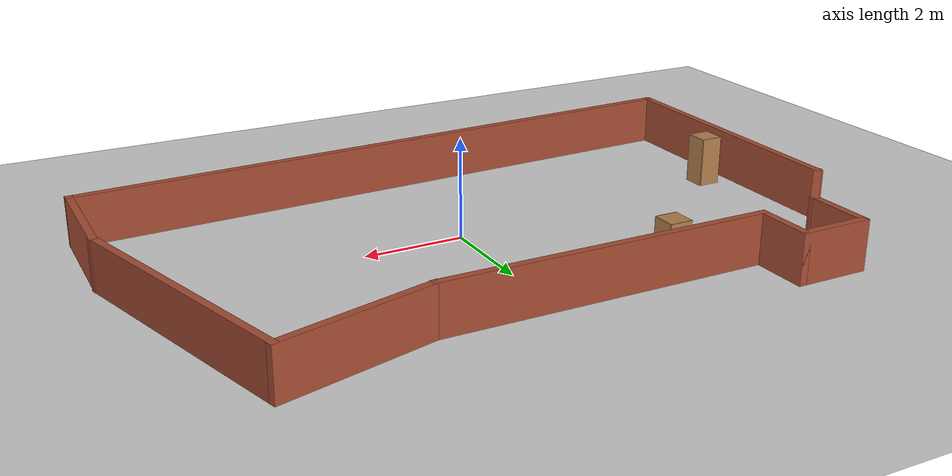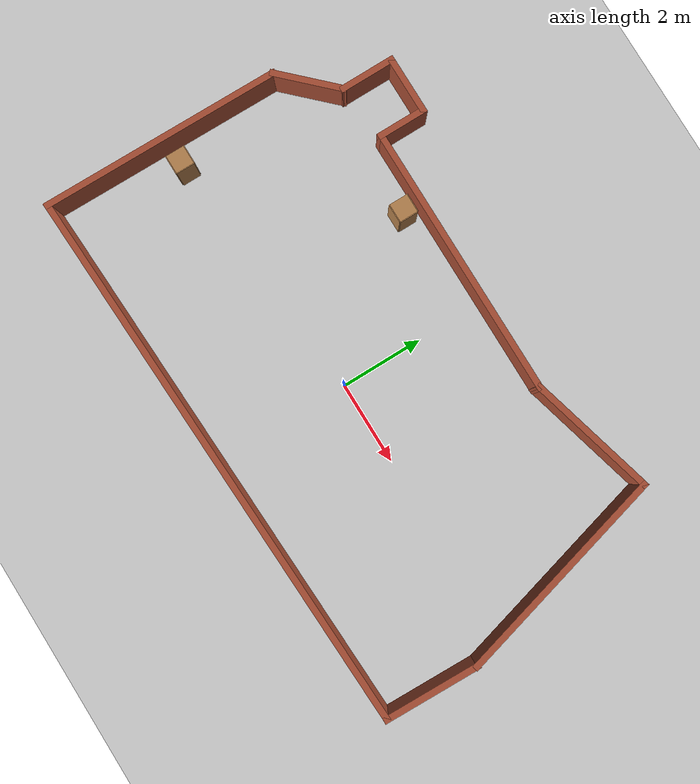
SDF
<sdf version="1.6">
 <world name="default">
  <light name="sun" type="directional">
   <pose>0 0 10 0 -0 0</pose>
   <diffuse>0.8 0.8 0.8 1</diffuse>
   <specular>0.2 0.2 0.2 1</specular>
   <attenuation>
    <range>1000</range>
    <constant>0.9</constant>
    <linear>0.01</linear>
    <quadratic>0.001</quadratic>
   </attenuation>
   <direction>-0.5 0.1 -0.9</direction>
  </light>
  <model name="ground_plane">
   <static>1</static>
   <link name="link">
    <collision name="collision">
     <geometry><plane><normal>0 0 1</normal><size>100 100</size></plane></geometry>
     <surface>
      <contact><collide_bitmask>65535</collide_bitmask></contact>
      <friction><ode><mu>100</mu><mu2>50</mu2></ode></friction>
     </surface>
    </collision>
    <visual name="visual">
     <cast_shadows>0</cast_shadows>
     <geometry><plane><normal>0 0 1</normal><size>100 100</size></plane></geometry>
     <material>
      <script><uri>file://media/materials/scripts/gazebo.material</uri><name>Gazebo/Grey</name></script>
     </material>
    </visual>
   </link>
  </model>
  <gravity>0 0 -9.8</gravity>
  <magnetic_field>6e-06 2.3e-05 -4.2e-05</magnetic_field>
  <atmosphere type="adiabatic"/>
  <physics name="default_physics" default="0" type="ode">
   <max_step_size>0.001</max_step_size>
   <real_time_factor>1</real_time_factor>
   <real_time_update_rate>1000</real_time_update_rate>
  </physics>
  <scene><ambient>0.4 0.4 0.4 1</ambient><background>0.7 0.7 0.7 1</background><shadows>1</shadows></scene>
  <audio><device>default</device></audio>
  <spherical_coordinates>
   <surface_model>EARTH_WGS84</surface_model>
   <latitude_deg>0</latitude_deg>
   <longitude_deg>0</longitude_deg>
   <elevation>0</elevation>
   <heading_deg>0</heading_deg>
  </spherical_coordinates>
  <model name="plan_3_medium">
   <pose>-0.046964 0.588404 0 0 -0 0</pose>
   <link name="Wall_0">
    <collision name="Wall_0_Collision">
     <geometry><box><size>5.95832 0.15 1</size></box></geometry>
     <pose>0 0 0.5 0 -0 0</pose>
    </collision>
    <visual name="Wall_0_Visual">
     <pose>0 0 0.5 0 -0 0</pose>
     <geometry><box><size>5.95832 0.15 1</size></box></geometry>
     <material>
      <script><uri>file://media/materials/scripts/gazebo.material</uri><name>Gazebo/Bricks</name></script>
      <ambient>1 1 1 1</ambient>
     </material>
     <meta><layer>0</layer></meta>
    </visual>
    <pose>-6.73739 -1.20659 0 0 -0 1.56029</pose>
   </link>
   <link name="Wall_1">
    <collision name="Wall_1_Collision">
     <geometry><box><size>1.77217 0.15 1</size></box></geometry>
     <pose>0 0 0.5 0 -0 0</pose>
    </collision>
    <visual name="Wall_1_Visual">
     <pose>0 0 0.5 0 -0 0</pose>
     <geometry><box><size>1.77217 0.15 1</size></box></geometry>
     <material>
      <script><uri>file://media/materials/scripts/gazebo.material</uri><name>Gazebo/Bricks</name></script>
      <ambient>1 1 1 1</ambient>
     </material>
     <meta><layer>0</layer></meta>
    </visual>
    <pose>-6.14089 2.27841 0 0 -0 0.798475</pose>
   </link>
   <link name="Wall_2">
    <collision name="Wall_2_Collision">
     <geometry><box><size>1.40382 0.15 1</size></box></geometry>
     <pose>0 0 0.5 0 -0 0</pose>
    </collision>
    <visual name="Wall_2_Visual">
     <pose>0 0 0.5 0 -0 0</pose>
     <geometry><box><size>1.40382 0.15 1</size></box></geometry>
     <material>
      <script><uri>file://media/materials/scripts/gazebo.material</uri><name>Gazebo/Bricks</name></script>
      <ambient>1 1 1 1</ambient>
     </material>
     <meta><layer>0</layer></meta>
    </visual>
    <pose>-5.57489 3.48641 0 0 -0 1.5708</pose>
   </link>
   <link name="Wall_3">
    <collision name="Wall_3_Collision">
     <geometry><box><size>1.5 0.15 1</size></box></geometry>
     <pose>0 0 0.5 0 -0 0</pose>
    </collision>
    <visual name="Wall_3_Visual">
     <pose>0 0 0.5 0 -0 0</pose>
     <geometry><box><size>1.5 0.15 1</size></box></geometry>
     <material>
      <script><uri>file://media/materials/scripts/gazebo.material</uri><name>Gazebo/Bricks</name></script>
      <ambient>1 1 1 1</ambient>
     </material>
     <meta><layer>0</layer></meta>
    </visual>
    <pose>-4.89989 4.11341 0 0 -0 0</pose>
   </link>
   <link name="Wall_4">
    <collision name="Wall_4_Collision">
     <geometry><box><size>1.25 0.15 1</size></box></geometry>
     <pose>0 0 0.5 0 -0 0</pose>
    </collision>
    <visual name="Wall_4_Visual">
     <pose>0 0 0.5 0 -0 0</pose>
     <geometry><box><size>1.25 0.15 1</size></box></geometry>
     <material>
      <script><uri>file://media/materials/scripts/gazebo.material</uri><name>Gazebo/Bricks</name></script>
      <ambient>1 1 1 1</ambient>
     </material>
     <meta><layer>0</layer></meta>
    </visual>
    <pose>-4.22489 3.56341 0 0 -0 -1.5708</pose>
   </link>
   <link name="Wall_5">
    <collision name="Wall_5_Collision">
     <geometry><box><size>6.75 0.15 1</size></box></geometry>
     <pose>0 0 0.5 0 -0 0</pose>
    </collision>
    <visual name="Wall_5_Visual">
     <pose>0 0 0.5 0 -0 0</pose>
     <geometry><box><size>6.75 0.15 1</size></box></geometry>
     <material>
      <script><uri>file://media/materials/scripts/gazebo.material</uri><name>Gazebo/Bricks</name></script>
      <ambient>1 1 1 1</ambient>
     </material>
     <meta><layer>0</layer></meta>
    </visual>
    <pose>-0.924891 3.01341 0 0 -0 0</pose>
   </link>
   <link name="Wall_6">
    <collision name="Wall_6_Collision">
     <geometry><box><size>3.25 0.15 1</size></box></geometry>
     <pose>0 0 0.5 0 -0 0</pose>
    </collision>
    <visual name="Wall_6_Visual">
     <pose>0 0 0.5 0 -0 0</pose>
     <geometry><box><size>3.25 0.15 1</size></box></geometry>
     <material>
      <script><uri>file://media/materials/scripts/gazebo.material</uri><name>Gazebo/Bricks</name></script>
      <ambient>1 1 1 1</ambient>
     </material>
     <meta><layer>0</layer></meta>
    </visual>
    <pose>3.87211 3.41441 0 0 -0 0.261725</pose>
   </link>
   <link name="Wall_7">
    <collision name="Wall_7_Collision">
     <geometry><box><size>5.5 0.15 1</size></box></geometry>
     <pose>0 0 0.5 0 -0 0</pose>
    </collision>
    <visual name="Wall_7_Visual">
     <pose>0 0 0.5 0 -0 0</pose>
     <geometry><box><size>5.5 0.15 1</size></box></geometry>
     <material>
      <script><uri>file://media/materials/scripts/gazebo.material</uri><name>Gazebo/Bricks</name></script>
      <ambient>1 1 1 1</ambient>
     </material>
     <meta><layer>0</layer></meta>
    </visual>
    <pose>6.06161 1.23141 0 0 -0 -1.30895</pose>
   </link>
   <link name="Wall_8">
    <collision name="Wall_8_Collision">
     <geometry><box><size>2.39327 0.15 1</size></box></geometry>
     <pose>0 0 0.5 0 -0 0</pose>
    </collision>
    <visual name="Wall_8_Visual">
     <pose>0 0 0.5 0 -0 0</pose>
     <geometry><box><size>2.39327 0.15 1</size></box></geometry>
     <material>
      <script><uri>file://media/materials/scripts/gazebo.material</uri><name>Gazebo/Bricks</name></script>
      <ambient>1 1 1 1</ambient>
     </material>
     <meta><layer>0</layer></meta>
    </visual>
    <pose>6.72311 -2.47359 0 0 -0 -1.59844</pose>
   </link>
   <link name="Wall_9">
    <collision name="Wall_9_Collision">
     <geometry><box><size>13.6203 0.15 1</size></box></geometry>
     <pose>0 0 0.5 0 -0 0</pose>
    </collision>
    <visual name="Wall_9_Visual">
     <pose>0 0 0.5 0 -0 0</pose>
     <geometry><box><size>13.6203 0.15 1</size></box></geometry>
     <material>
      <script><uri>file://media/materials/scripts/gazebo.material</uri><name>Gazebo/Bricks</name></script>
      <ambient>1 1 1 1</ambient>
     </material>
     <meta><layer>0</layer></meta>
    </visual>
    <pose>-0.037891 -3.85259 0 0 -0 -3.10328</pose>
   </link>
   <static>1</static>
  </model>
  <model name="cabinet">
   <static>1</static>
   <link name="cabinet_bottom_plate">
    <inertial>
     <pose>0 0 -1 0 -0 0</pose>
     <inertia><ixx>2.05</ixx><ixy>0</ixy><ixz>0</ixz><iyy>2.05</iyy><iyz>0</iyz><izz>2.05</izz></inertia>
     <mass>25</mass>
    </inertial>
    <collision name="cabinet_bottom_plate_geom">
     <pose>0 0 0.01 0 -0 0</pose>
     <geometry><box><size>0.45 0.45 0.02</size></box></geometry>
    </collision>
    <visual name="cabinet_bottom_plate_geom_visual">
     <pose>0 0 0.01 0 -0 0</pose>
     <geometry><box><size>0.45 0.45 0.02</size></box></geometry>
     <material>
      <script><uri>file://media/materials/scripts/gazebo.material</uri><name>Gazebo/Wood</name></script>
     </material>
    </visual>
    <collision name="cabinet_bottom_plate_geom_cabinet_back_plate">
     <pose>0.235 0 0.51 0 -0 0</pose>
     <geometry><box><size>0.02 0.45 1.02</size></box></geometry>
    </collision>
    <visual name="cabinet_bottom_plate_geom_cabinet_back_plate_visual">
     <pose>0.235 0 0.51 0 -0 0</pose>
     <geometry><box><size>0.02 0.45 1.02</size></box></geometry>
     <material>
      <script><uri>file://media/materials/scripts/gazebo.material</uri><name>Gazebo/Wood</name></script>
     </material>
    </visual>
    <collision name="cabinet_bottom_plate_geom_cabinet_left_plate">
     <pose>0 0.235 0.51 0 -0 0</pose>
     <geometry><box><size>0.45 0.02 1.02</size></box></geometry>
    </collision>
    <visual name="cabinet_bottom_plate_geom_cabinet_left_plate_visual">
     <pose>0 0.235 0.51 0 -0 0</pose>
     <geometry><box><size>0.45 0.02 1.02</size></box></geometry>
     <material>
      <script><uri>file://media/materials/scripts/gazebo.material</uri><name>Gazebo/Wood</name></script>
     </material>
    </visual>
    <collision name="cabinet_bottom_plate_geom_cabinet_middle_plate">
     <pose>0 0 0.51 0 -0 0</pose>
     <geometry><box><size>0.45 0.45 0.02</size></box></geometry>
    </collision>
    <visual name="cabinet_bottom_plate_geom_cabinet_middle_plate_visual">
     <pose>0 0 0.51 0 -0 0</pose>
     <geometry><box><size>0.45 0.45 0.02</size></box></geometry>
     <material>
      <script><uri>file://media/materials/scripts/gazebo.material</uri><name>Gazebo/Wood</name></script>
     </material>
    </visual>
    <collision name="cabinet_bottom_plate_geom_cabinet_right_plate">
     <pose>0 -0.235 0.51 0 -0 0</pose>
     <geometry><box><size>0.45 0.02 1.02</size></box></geometry>
    </collision>
    <visual name="cabinet_bottom_plate_geom_cabinet_right_plate_visual">
     <pose>0 -0.235 0.51 0 -0 0</pose>
     <geometry><box><size>0.45 0.02 1.02</size></box></geometry>
     <material>
      <script><uri>file://media/materials/scripts/gazebo.material</uri><name>Gazebo/Wood</name></script>
     </material>
    </visual>
    <collision name="cabinet_bottom_plate_geom_cabinet_top_plate">
     <pose>0 0 1.01 0 -0 0</pose>
     <geometry><box><size>0.45 0.45 0.02</size></box></geometry>
    </collision>
    <visual name="cabinet_bottom_plate_geom_cabinet_top_plate_visual">
     <pose>0 0 1.01 0 -0 0</pose>
     <geometry><box><size>0.45 0.45 0.02</size></box></geometry>
     <material>
      <script><uri>file://media/materials/scripts/gazebo.material</uri><name>Gazebo/Wood</name></script>
     </material>
    </visual>
   </link>
   <pose>-6.14801 -0.493922 0 0 -0 0</pose>
  </model>
  <model name="cabinet_0">
   <static>1</static>
   <link name="cabinet_bottom_plate">
    <inertial>
     <pose>0 0 -1 0 -0 0</pose>
     <inertia><ixx>2.05</ixx><ixy>0</ixy><ixz>0</ixz><iyy>2.05</iyy><iyz>0</iyz><izz>2.05</izz></inertia>
     <mass>25</mass>
    </inertial>
    <collision name="cabinet_bottom_plate_geom">
     <pose>0 0 0.01 0 -0 0</pose>
     <geometry><box><size>0.45 0.45 0.02</size></box></geometry>
    </collision>
    <visual name="cabinet_bottom_plate_geom_visual">
     <pose>0 0 0.01 0 -0 0</pose>
     <geometry><box><size>0.45 0.45 0.02</size></box></geometry>
     <material>
      <script><uri>file://media/materials/scripts/gazebo.material</uri><name>Gazebo/Wood</name></script>
     </material>
    </visual>
    <collision name="cabinet_bottom_plate_geom_cabinet_back_plate">
     <pose>0.235 0 0.51 0 -0 0</pose>
     <geometry><box><size>0.02 0.45 1.02</size></box></geometry>
    </collision>
    <visual name="cabinet_bottom_plate_geom_cabinet_back_plate_visual">
     <pose>0.235 0 0.51 0 -0 0</pose>
     <geometry><box><size>0.02 0.45 1.02</size></box></geometry>
     <material>
      <script><uri>file://media/materials/scripts/gazebo.material</uri><name>Gazebo/Wood</name></script>
     </material>
    </visual>
    <collision name="cabinet_bottom_plate_geom_cabinet_left_plate">
     <pose>0 0.235 0.51 0 -0 0</pose>
     <geometry><box><size>0.45 0.02 1.02</size></box></geometry>
    </collision>
    <visual name="cabinet_bottom_plate_geom_cabinet_left_plate_visual">
     <pose>0 0.235 0.51 0 -0 0</pose>
     <geometry><box><size>0.45 0.02 1.02</size></box></geometry>
     <material>
      <script><uri>file://media/materials/scripts/gazebo.material</uri><name>Gazebo/Wood</name></script>
     </material>
    </visual>
    <collision name="cabinet_bottom_plate_geom_cabinet_middle_plate">
     <pose>0 0 0.51 0 -0 0</pose>
     <geometry><box><size>0.45 0.45 0.02</size></box></geometry>
    </collision>
    <visual name="cabinet_bottom_plate_geom_cabinet_middle_plate_visual">
     <pose>0 0 0.51 0 -0 0</pose>
     <geometry><box><size>0.45 0.45 0.02</size></box></geometry>
     <material>
      <script><uri>file://media/materials/scripts/gazebo.material</uri><name>Gazebo/Wood</name></script>
     </material>
    </visual>
    <collision name="cabinet_bottom_plate_geom_cabinet_right_plate">
     <pose>0 -0.235 0.51 0 -0 0</pose>
     <geometry><box><size>0.45 0.02 1.02</size></box></geometry>
    </collision>
    <visual name="cabinet_bottom_plate_geom_cabinet_right_plate_visual">
     <pose>0 -0.235 0.51 0 -0 0</pose>
     <geometry><box><size>0.45 0.02 1.02</size></box></geometry>
     <material>
      <script><uri>file://media/materials/scripts/gazebo.material</uri><name>Gazebo/Wood</name></script>
     </material>
    </visual>
    <collision name="cabinet_bottom_plate_geom_cabinet_top_plate">
     <pose>0 0 1.01 0 -0 0</pose>
     <geometry><box><size>0.45 0.45 0.02</size></box></geometry>
    </collision>
    <visual name="cabinet_bottom_plate_geom_cabinet_top_plate_visual">
     <pose>0 0 1.01 0 -0 0</pose>
     <geometry><box><size>0.45 0.45 0.02</size></box></geometry>
     <material>
      <script><uri>file://media/materials/scripts/gazebo.material</uri><name>Gazebo/Wood</name></script>
     </material>
    </visual>
   </link>
   <pose>-2.61401 3.15706 0 0 -0 0</pose>
  </model>
 </world>
</sdf>
